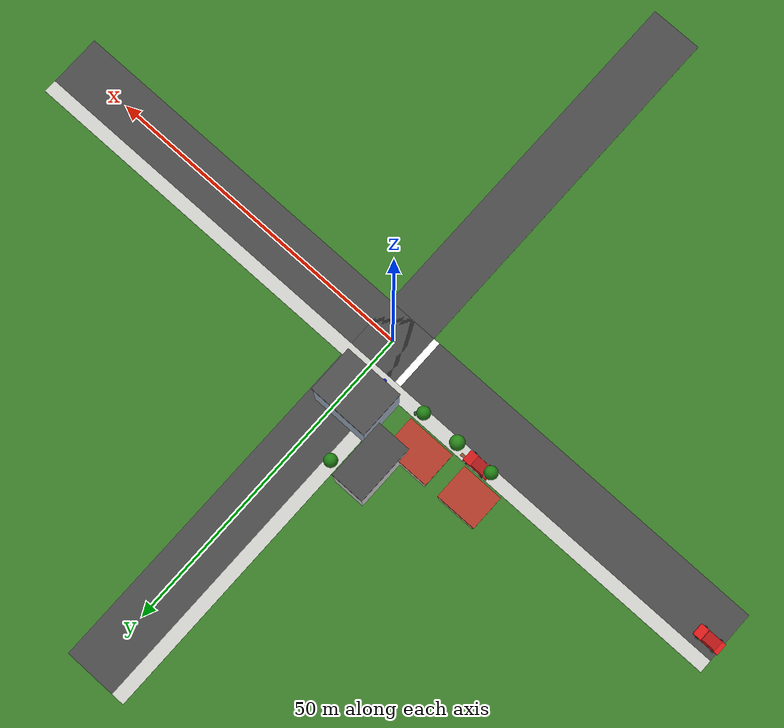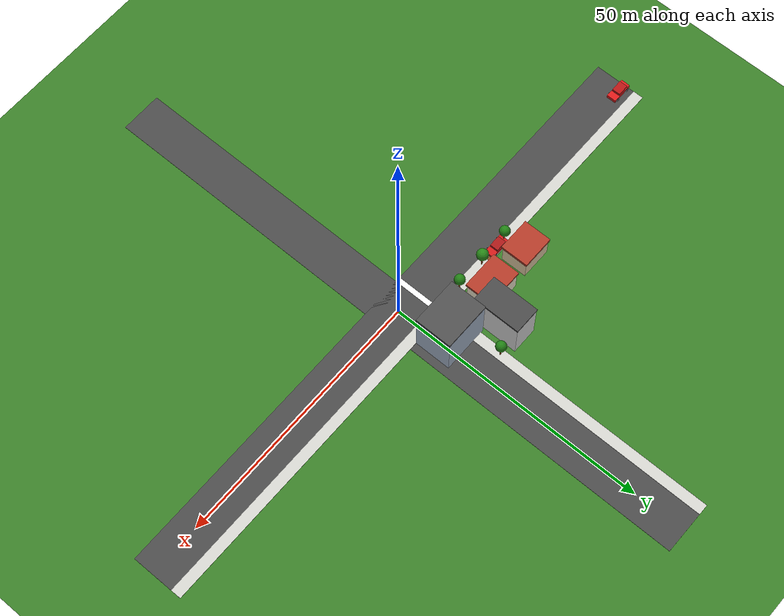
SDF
<sdf version="1.9">
 <world name="smartnav_world">
  <include><uri>https://fuel.gazebosim.org/1.0/OpenRobotics/models/Sun</uri></include>
  <model name="ground_grass">
   <static>true</static>
   <link name="link">
    <collision name="col">
     <geometry><plane><normal>0 0 1</normal><size>120 120</size></plane></geometry>
    </collision>
    <visual name="vis">
     <geometry><plane><normal>0 0 1</normal><size>120 120</size></plane></geometry>
     <material><ambient>0.18 0.40 0.12 1</ambient><diffuse>0.22 0.48 0.15 1</diffuse></material>
    </visual>
   </link>
  </model>
  <model name="road_main">
   <static>true</static>
   <pose>0 0 0.02 0 0 0</pose>
   <link name="link">
    <collision name="col"><geometry><box><size>120 8 0.04</size></box></geometry></collision>
    <visual name="vis">
     <geometry><box><size>120 8 0.04</size></box></geometry>
     <material><ambient>0.22 0.22 0.22 1</ambient><diffuse>0.28 0.28 0.28 1</diffuse></material>
    </visual>
   </link>
  </model>
  <model name="road_cross">
   <static>true</static>
   <pose>0 0 0.02 0 0 0</pose>
   <link name="link">
    <collision name="col"><geometry><box><size>8 120 0.04</size></box></geometry></collision>
    <visual name="vis">
     <geometry><box><size>8 120 0.04</size></box></geometry>
     <material><ambient>0.22 0.22 0.22 1</ambient><diffuse>0.28 0.28 0.28 1</diffuse></material>
    </visual>
   </link>
  </model>
  <model name="sidewalk_north">
   <static>true</static>
   <pose>0 5 0.06 0 0 0</pose>
   <link name="link">
    <collision name="col"><geometry><box><size>120 2 0.12</size></box></geometry></collision>
    <visual name="vis">
     <geometry><box><size>120 2 0.12</size></box></geometry>
     <material><ambient>0.73 0.73 0.71 1</ambient><diffuse>0.80 0.80 0.78 1</diffuse></material>
    </visual>
   </link>
  </model>
  <model name="sidewalk_west_N">
   <static>true</static>
   <pose>-5 33 0.06 0 0 0</pose>
   <link name="link">
    <collision name="col"><geometry><box><size>2 54 0.12</size></box></geometry></collision>
    <visual name="vis">
     <geometry><box><size>2 54 0.12</size></box></geometry>
     <material><ambient>0.73 0.73 0.71 1</ambient><diffuse>0.80 0.80 0.78 1</diffuse></material>
    </visual>
   </link>
  </model>
  <model name="crosswalk_west">
   <static>true</static>
   <pose>-4.5  0   0.05 0 0 0</pose>
   <link name="l">
    <visual name="v">
     <geometry><box><size>1 8 0.01</size></box></geometry>
     <material><ambient>0.95 0.95 0.95 1</ambient><diffuse>1 1 1 1</diffuse></material>
    </visual>
   </link>
  </model>
  <model name="house_n1">
   <static>true</static>
   <pose>-22 9.5 0 0 0 0</pose>
   <link name="walls">
    <pose>0 0 2 0 0 0</pose>
    <collision name="col"><geometry><box><size>6 5 4</size></box></geometry></collision>
    <visual name="vis">
     <geometry><box><size>6 5 4</size></box></geometry>
     <material><ambient>0.87 0.79 0.63 1</ambient><diffuse>0.90 0.82 0.66 1</diffuse></material>
    </visual>
   </link>
   <link name="roof">
    <pose>0 0 4.3 0 0 0</pose>
    <visual name="vis">
     <geometry><box><size>6.4 5.4 0.6</size></box></geometry>
     <material><ambient>0.62 0.18 0.12 1</ambient><diffuse>0.68 0.22 0.15 1</diffuse></material>
    </visual>
   </link>
  </model>
  <model name="house_n2">
   <static>true</static>
   <pose>-13 9.5 0 0 0 0</pose>
   <link name="walls">
    <pose>0 0 2.25 0 0 0</pose>
    <collision name="col"><geometry><box><size>7 5 4.5</size></box></geometry></collision>
    <visual name="vis">
     <geometry><box><size>7 5 4.5</size></box></geometry>
     <material><ambient>0.94 0.90 0.80 1</ambient><diffuse>0.96 0.93 0.83 1</diffuse></material>
    </visual>
   </link>
   <link name="roof">
    <pose>0 0 4.75 0 0 0</pose>
    <visual name="vis">
     <geometry><box><size>7.4 5.4 0.5</size></box></geometry>
     <material><ambient>0.62 0.18 0.12 1</ambient><diffuse>0.68 0.22 0.15 1</diffuse></material>
    </visual>
   </link>
  </model>
  <model name="building_n1">
   <static>true</static>
   <pose>-2 9.5 0 0 0 0</pose>
   <link name="walls">
    <pose>0 0 4.5 0 0 0</pose>
    <collision name="col"><geometry><box><size>9 7 9</size></box></geometry></collision>
    <visual name="vis">
     <geometry><box><size>9 7 9</size></box></geometry>
     <material><ambient>0.62 0.68 0.75 1</ambient><diffuse>0.66 0.72 0.80 1</diffuse></material>
    </visual>
   </link>
   <link name="roof">
    <pose>0 0 9.2 0 0 0</pose>
    <visual name="vis">
     <geometry><box><size>9.2 7.2 0.4</size></box></geometry>
     <material><ambient>0.28 0.28 0.28 1</ambient><diffuse>0.30 0.30 0.30 1</diffuse></material>
    </visual>
   </link>
  </model>
  <model name="building_w1">
   <static>true</static>
   <pose>-9.5 15 0 0 0 0</pose>
   <link name="walls">
    <pose>0 0 4 0 0 0</pose>
    <collision name="col"><geometry><box><size>5 9 8</size></box></geometry></collision>
    <visual name="vis">
     <geometry><box><size>5 9 8</size></box></geometry>
     <material><ambient>0.82 0.82 0.82 1</ambient><diffuse>0.86 0.86 0.86 1</diffuse></material>
    </visual>
   </link>
   <link name="roof">
    <pose>0 0 8.2 0 0 0</pose>
    <visual name="vis">
     <geometry><box><size>5.2 9.2 0.4</size></box></geometry>
     <material><ambient>0.25 0.25 0.25 1</ambient><diffuse>0.28 0.28 0.28 1</diffuse></material>
    </visual>
   </link>
  </model>
  <model name="car_1">
   <static>true</static>
   <pose>-20 5.0 0.12 0 0 0</pose>
   <link name="body">
    <pose>0 0 0.35 0 0 0</pose>
    <collision name="col"><geometry><box><size>4.2 1.8 0.7</size></box></geometry></collision>
    <visual name="vis">
     <geometry><box><size>4.2 1.8 0.7</size></box></geometry>
     <material><ambient>0.75 0.08 0.08 1</ambient><diffuse>0.80 0.10 0.10 1</diffuse></material>
    </visual>
   </link>
   <link name="cabin">
    <pose>-0.3 0 0.95 0 0 0</pose>
    <visual name="vis">
     <geometry><box><size>2.2 1.6 0.55</size></box></geometry>
     <material><ambient>0.60 0.07 0.07 1</ambient><diffuse>0.65 0.09 0.09 1</diffuse></material>
    </visual>
   </link>
   <link name="wfl">
    <pose>1.3 0.95 0.28 1.5708 0 0</pose>
    <collision name="col">
     <geometry><cylinder><radius>0.28</radius><length>0.2</length></cylinder></geometry>
    </collision>
    <visual name="vis">
     <geometry><cylinder><radius>0.28</radius><length>0.2</length></cylinder></geometry>
     <material><ambient>0.08 0.08 0.08 1</ambient><diffuse>0.1 0.1 0.1 1</diffuse></material>
    </visual>
   </link>
   <link name="wfr">
    <pose>1.3 -0.95 0.28 1.5708 0 0</pose>
    <collision name="col">
     <geometry><cylinder><radius>0.28</radius><length>0.2</length></cylinder></geometry>
    </collision>
    <visual name="vis">
     <geometry><cylinder><radius>0.28</radius><length>0.2</length></cylinder></geometry>
     <material><ambient>0.08 0.08 0.08 1</ambient><diffuse>0.1 0.1 0.1 1</diffuse></material>
    </visual>
   </link>
   <link name="wrl">
    <pose>-1.3 0.95 0.28 1.5708 0 0</pose>
    <collision name="col">
     <geometry><cylinder><radius>0.28</radius><length>0.2</length></cylinder></geometry>
    </collision>
    <visual name="vis">
     <geometry><cylinder><radius>0.28</radius><length>0.2</length></cylinder></geometry>
     <material><ambient>0.08 0.08 0.08 1</ambient><diffuse>0.1 0.1 0.1 1</diffuse></material>
    </visual>
   </link>
   <link name="wrr">
    <pose>-1.3 -0.95 0.28 1.5708 0 0</pose>
    <collision name="col">
     <geometry><cylinder><radius>0.28</radius><length>0.2</length></cylinder></geometry>
    </collision>
    <visual name="vis">
     <geometry><cylinder><radius>0.28</radius><length>0.2</length></cylinder></geometry>
     <material><ambient>0.08 0.08 0.08 1</ambient><diffuse>0.1 0.1 0.1 1</diffuse></material>
    </visual>
   </link>
  </model>
  <model name="tree_n1">
   <static>true</static>
   <pose>-22 5 0 0 0 0</pose>
   <link name="trunk">
    <pose>0 0 1.2 0 0 0</pose>
    <collision name="col">
     <geometry><cylinder><radius>0.15</radius><length>2.4</length></cylinder></geometry>
    </collision>
    <visual name="vis">
     <geometry><cylinder><radius>0.15</radius><length>2.4</length></cylinder></geometry>
     <material><ambient>0.42 0.22 0.06 1</ambient><diffuse>0.48 0.26 0.07 1</diffuse></material>
    </visual>
   </link>
   <link name="canopy">
    <pose>0 0 3.4 0 0 0</pose>
    <collision name="col"><geometry><sphere><radius>1.0</radius></sphere></geometry></collision>
    <visual name="vis">
     <geometry><sphere><radius>1.0</radius></sphere></geometry>
     <material><ambient>0.10 0.42 0.07 1</ambient><diffuse>0.13 0.50 0.08 1</diffuse></material>
    </visual>
   </link>
  </model>
  <model name="tree_n2">
   <static>true</static>
   <pose>-16 5 0 0 0 0</pose>
   <link name="trunk">
    <pose>0 0 1.25 0 0 0</pose>
    <collision name="col">
     <geometry><cylinder><radius>0.13</radius><length>2.5</length></cylinder></geometry>
    </collision>
    <visual name="vis">
     <geometry><cylinder><radius>0.13</radius><length>2.5</length></cylinder></geometry>
     <material><ambient>0.42 0.22 0.06 1</ambient><diffuse>0.48 0.26 0.07 1</diffuse></material>
    </visual>
   </link>
   <link name="canopy">
    <pose>0 0 3.6 0 0 0</pose>
    <collision name="col"><geometry><sphere><radius>1.1</radius></sphere></geometry></collision>
    <visual name="vis">
     <geometry><sphere><radius>1.1</radius></sphere></geometry>
     <material><ambient>0.12 0.45 0.08 1</ambient><diffuse>0.15 0.52 0.09 1</diffuse></material>
    </visual>
   </link>
  </model>
  <model name="tree_n3">
   <static>true</static>
   <pose>-10 5 0 0 0 0</pose>
   <link name="trunk">
    <pose>0 0 1.2 0 0 0</pose>
    <collision name="col">
     <geometry><cylinder><radius>0.15</radius><length>2.4</length></cylinder></geometry>
    </collision>
    <visual name="vis">
     <geometry><cylinder><radius>0.15</radius><length>2.4</length></cylinder></geometry>
     <material><ambient>0.42 0.22 0.06 1</ambient><diffuse>0.48 0.26 0.07 1</diffuse></material>
    </visual>
   </link>
   <link name="canopy">
    <pose>0 0 3.4 0 0 0</pose>
    <collision name="col"><geometry><sphere><radius>1.0</radius></sphere></geometry></collision>
    <visual name="vis">
     <geometry><sphere><radius>1.0</radius></sphere></geometry>
     <material><ambient>0.10 0.42 0.07 1</ambient><diffuse>0.13 0.50 0.08 1</diffuse></material>
    </visual>
   </link>
  </model>
  <model name="tree_c4">
   <static>true</static>
   <pose>-5 18 0 0 0 0</pose>
   <link name="trunk">
    <pose>0 0 1.2 0 0 0</pose>
    <collision name="col">
     <geometry><cylinder><radius>0.14</radius><length>2.4</length></cylinder></geometry>
    </collision>
    <visual name="vis">
     <geometry><cylinder><radius>0.14</radius><length>2.4</length></cylinder></geometry>
     <material><ambient>0.42 0.22 0.06 1</ambient><diffuse>0.48 0.26 0.07 1</diffuse></material>
    </visual>
   </link>
   <link name="canopy">
    <pose>0 0 3.4 0 0 0</pose>
    <collision name="col"><geometry><sphere><radius>1.0</radius></sphere></geometry></collision>
    <visual name="vis">
     <geometry><sphere><radius>1.0</radius></sphere></geometry>
     <material><ambient>0.10 0.42 0.07 1</ambient><diffuse>0.13 0.50 0.08 1</diffuse></material>
    </visual>
   </link>
  </model>
  <model name="lamp_NW">
   <static>true</static>
   <pose>-6.2 6.2 0 0 0 0</pose>
   <link name="pole">
    <visual name="pole">
     <pose>0 0 2.5 0 0 0</pose>
     <geometry><cylinder><radius>0.055</radius><length>5.0</length></cylinder></geometry>
     <material><ambient>0.40 0.40 0.42 1</ambient><diffuse>0.45 0.45 0.47 1</diffuse></material>
    </visual>
    <visual name="arm">
     <pose>0.5 0 4.85 0 1.5708 0</pose>
     <geometry><cylinder><radius>0.035</radius><length>1.0</length></cylinder></geometry>
     <material><ambient>0.40 0.40 0.42 1</ambient><diffuse>0.45 0.45 0.47 1</diffuse></material>
    </visual>
    <visual name="head">
     <pose>1.0 0 4.75 0 0 0</pose>
     <geometry><box><size>0.38 0.18 0.14</size></box></geometry>
     <material>
      <ambient>0.95 0.90 0.55 1</ambient>
      <diffuse>1.0 0.95 0.65 1</diffuse>
      <emissive>0.5 0.45 0.15 1</emissive>
     </material>
    </visual>
    <collision name="col">
     <pose>0 0 2.5 0 0 0</pose>
     <geometry><cylinder><radius>0.055</radius><length>5.0</length></cylinder></geometry>
    </collision>
   </link>
  </model>
  <model name="tl_NW">
   <static>true</static>
   <pose>-5.5 5.5 0 0 0 0.7854</pose>
   <link name="link">
    <visual name="pole">
     <pose>0 0 1.9 0 0 0</pose>
     <geometry><cylinder><radius>0.05</radius><length>3.8</length></cylinder></geometry>
     <material><ambient>0.28 0.28 0.28 1</ambient><diffuse>0.32 0.32 0.32 1</diffuse></material>
    </visual>
    <visual name="box">
     <pose>0 0 3.9 0 0 0</pose>
     <geometry><box><size>0.24 0.24 0.72</size></box></geometry>
     <material><ambient>0.12 0.12 0.12 1</ambient><diffuse>0.18 0.18 0.18 1</diffuse></material>
    </visual>
    <visual name="red">
     <pose>-0.13 0 4.15 0 1.5708 0</pose>
     <geometry><sphere><radius>0.068</radius></sphere></geometry>
     <material>
      <ambient>0.90 0.05 0.05 1</ambient>
      <diffuse>1.0 0.08 0.08 1</diffuse>
      <emissive>0.80 0 0 1</emissive>
     </material>
    </visual>
    <visual name="orange">
     <pose>-0.13 0 3.90 0 1.5708 0</pose>
     <geometry><sphere><radius>0.068</radius></sphere></geometry>
     <material><ambient>0.25 0.12 0.00 1</ambient><diffuse>0.30 0.14 0.00 1</diffuse></material>
    </visual>
    <visual name="green">
     <pose>-0.13 0 3.65 0 1.5708 0</pose>
     <geometry><sphere><radius>0.068</radius></sphere></geometry>
     <material><ambient>0.05 0.22 0.05 1</ambient><diffuse>0.08 0.28 0.08 1</diffuse></material>
    </visual>
    <collision name="col">
     <pose>0 0 1.9 0 0 0</pose>
     <geometry><cylinder><radius>0.05</radius><length>3.8</length></cylinder></geometry>
    </collision>
   </link>
  </model>
  <model name="poubelle">
   <static>true</static>
   <pose>-9 5.4 0.45 0 0 0</pose>
   <link name="link">
    <collision name="col">
     <geometry><cylinder><radius>0.28</radius><length>0.75</length></cylinder></geometry>
    </collision>
    <visual name="vis">
     <geometry><cylinder><radius>0.28</radius><length>0.75</length></cylinder></geometry>
     <material><ambient>0.12 0.22 0.12 1</ambient><diffuse>0.15 0.28 0.15 1</diffuse></material>
    </visual>
   </link>
  </model>
  <model name="bench_1">
   <static>true</static>
   <pose>-18 5.4 0.22 0 0 0</pose>
   <link name="link">
    <visual name="seat">
     <geometry><box><size>1.6 0.45 0.08</size></box></geometry>
     <material><ambient>0.45 0.28 0.12 1</ambient><diffuse>0.52 0.32 0.14 1</diffuse></material>
    </visual>
    <visual name="back">
     <pose>-0.7 0 0.30 0 -0.35 0</pose>
     <geometry><box><size>0.08 0.45 0.60</size></box></geometry>
     <material><ambient>0.45 0.28 0.12 1</ambient><diffuse>0.52 0.32 0.14 1</diffuse></material>
    </visual>
    <collision name="col"><geometry><box><size>1.6 0.45 0.70</size></box></geometry></collision>
   </link>
  </model>
  <model name="moving_car_A">
   <pose>-58 2 0.54 0 0 0</pose>
   <link name="chassis">
    <inertial>
     <mass>1200</mass>
     <inertia><ixx>400</ixx><ixy>0</ixy><ixz>0</ixz><iyy>1800</iyy><iyz>0</iyz><izz>1800</izz></inertia>
    </inertial>
    <visual name="body">
     <geometry><box><size>4.2 1.8 0.65</size></box></geometry>
     <material>
      <ambient>0.80 0.08 0.08 1</ambient>
      <diffuse>0.85 0.10 0.10 1</diffuse>
      <specular>0.3 0.1 0.1 1</specular>
     </material>
    </visual>
    <visual name="cabin">
     <pose>-0.3 0 0.58 0 0 0</pose>
     <geometry><box><size>2.2 1.6 0.52</size></box></geometry>
     <material><ambient>0.65 0.06 0.06 1</ambient><diffuse>0.70 0.08 0.08 1</diffuse></material>
    </visual>
    <visual name="wfl">
     <pose>1.3  0.95 -0.22 1.5708 0 0</pose>
     <geometry><cylinder><radius>0.28</radius><length>0.20</length></cylinder></geometry>
     <material><ambient>0.08 0.08 0.08 1</ambient><diffuse>0.12 0.12 0.12 1</diffuse></material>
    </visual>
    <visual name="wfr">
     <pose>1.3 -0.95 -0.22 1.5708 0 0</pose>
     <geometry><cylinder><radius>0.28</radius><length>0.20</length></cylinder></geometry>
     <material><ambient>0.08 0.08 0.08 1</ambient><diffuse>0.12 0.12 0.12 1</diffuse></material>
    </visual>
    <visual name="wrl">
     <pose>-1.3  0.95 -0.22 1.5708 0 0</pose>
     <geometry><cylinder><radius>0.28</radius><length>0.20</length></cylinder></geometry>
     <material><ambient>0.08 0.08 0.08 1</ambient><diffuse>0.12 0.12 0.12 1</diffuse></material>
    </visual>
    <visual name="wrr">
     <pose>-1.3 -0.95 -0.22 1.5708 0 0</pose>
     <geometry><cylinder><radius>0.28</radius><length>0.20</length></cylinder></geometry>
     <material><ambient>0.08 0.08 0.08 1</ambient><diffuse>0.12 0.12 0.12 1</diffuse></material>
    </visual>
    <collision name="col"><geometry><box><size>4.2 1.8 1.0</size></box></geometry></collision>
   </link>
   <plugin filename="gz-sim-velocity-control-system" name="gz::sim::systems::VelocityControl">
    <initial_linear>7.0 0 0</initial_linear>
    <initial_angular>0 0 0</initial_angular>
   </plugin>
  </model>
  <model name="smartnav">
   <pose>-3 5 0.20 0 0 0</pose>
   <link name="base_link">
    <inertial>
     <mass>65</mass>
     <inertia><ixx>28.5</ixx><ixy>0</ixy><ixz>0</ixz><iyy>28.5</iyy><iyz>0</iyz><izz>2.03</izz></inertia>
    </inertial>
    <visual name="body">
     <pose>0 0 0.8 0 0 0</pose>
     <geometry><cylinder><radius>0.25</radius><length>1.6</length></cylinder></geometry>
     <material><ambient>0.1 0.1 0.8 1</ambient><diffuse>0.1 0.1 0.8 1</diffuse></material>
    </visual>
    <collision name="body_col">
     <pose>0 0 0.8 0 0 0</pose>
     <geometry><cylinder><radius>0.25</radius><length>1.6</length></cylinder></geometry>
    </collision>
    <visual name="cane">
     <pose>0.22 0.15 0.95 0 1.0 0</pose>
     <geometry><cylinder><radius>0.015</radius><length>1.0</length></cylinder></geometry>
     <material><ambient>0.8 0.1 0.1 1</ambient><diffuse>0.8 0.1 0.1 1</diffuse></material>
    </visual>
    <sensor name="laser_sensor" type="gpu_lidar">
     <pose>0 0 1.6 0 0 0</pose>
     <update_rate>20</update_rate>
     <always_on>true</always_on>
     <visualize>false</visualize>
     <lidar>
      <scan>
       <horizontal>
        <samples>360</samples>
        <resolution>1</resolution>
        <min_angle>-3.14159265</min_angle>
        <max_angle>3.14159265</max_angle>
       </horizontal>
      </scan>
      <range><min>0.1</min><max>10.0</max><resolution>0.01</resolution></range>
     </lidar>
    </sensor>
   </link>
   <plugin filename="gz-sim-velocity-control-system" name="gz::sim::systems::VelocityControl">
    <topic>/smartnav/cmd_vel</topic>
   </plugin>
  </model>
 </world>
</sdf>
